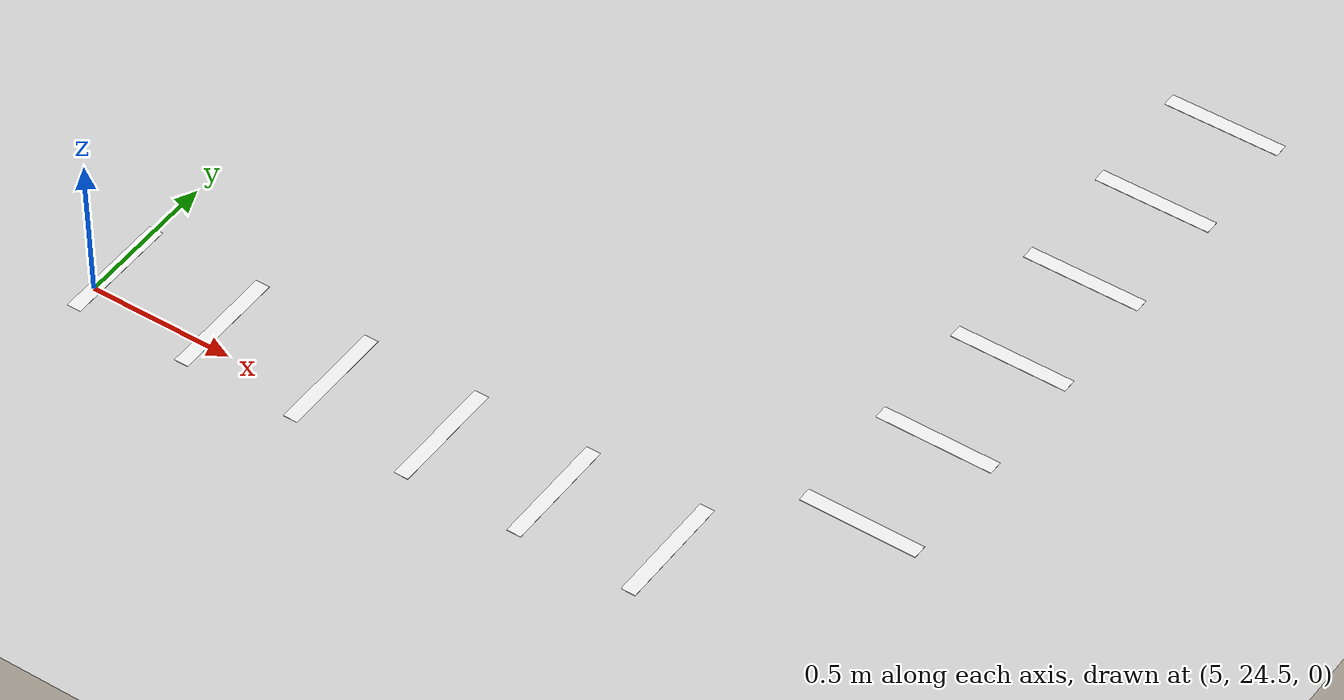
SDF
<sdf version="1.6">
 <world name="default">
  <model name="ground_plane">
   <static>1</static>
   <link name="link">
    <collision name="collision">
     <geometry><plane><normal>0 0 1</normal><size>100 100</size></plane></geometry>
     <surface><friction><ode><mu>100</mu><mu2>50</mu2></ode></friction></surface>
    </collision>
    <visual name="visual">
     <cast_shadows>0</cast_shadows>
     <geometry><plane><normal>0 0 1</normal><size>100 100</size></plane></geometry>
     <material>
      <script><uri>file://media/materials/scripts/gazebo.material</uri><name>Gazebo/Grey</name></script>
     </material>
    </visual>
   </link>
  </model>
  <model name="zebra_crossing_40cmx200cm_7">
   <link name="link_2">
    <inertial>
     <mass>1</mass>
     <inertia>
      <ixx>0.166667</ixx>
      <ixy>0</ixy>
      <ixz>0</ixz>
      <iyy>0.166667</iyy>
      <iyz>0</iyz>
      <izz>0.166667</izz>
     </inertia>
    </inertial>
    <visual name="ModelPreview_5::link_2::visual_1">
     <pose>-0.2 0 0 0 -0 0</pose>
     <geometry><box><size>0.05 0.4 0.001</size></box></geometry>
     <material>
      <lighting>1</lighting>
      <script><uri>file://media/materials/scripts/gazebo.material</uri><name>Gazebo/White</name></script>
     </material>
    </visual>
    <visual name="ModelPreview_5::link_2::visual_3">
     <pose>-0.6 0 0 0 -0 0</pose>
     <geometry><box><size>0.05 0.4 0.001</size></box></geometry>
     <material>
      <lighting>1</lighting>
      <script><uri>file://media/materials/scripts/gazebo.material</uri><name>Gazebo/White</name></script>
     </material>
    </visual>
    <visual name="ModelPreview_5::link_2::visual_4">
     <pose>1 0 0 0 -0 0</pose>
     <geometry><box><size>0.05 0.4 0.001</size></box></geometry>
     <material>
      <lighting>1</lighting>
      <script><uri>file://media/materials/scripts/gazebo.material</uri><name>Gazebo/White</name></script>
     </material>
    </visual>
    <visual name="visual">
     <pose>0.2 0 0 0 -0 0</pose>
     <geometry><box><size>0.05 0.4 0.001</size></box></geometry>
     <material>
      <lighting>1</lighting>
      <script><uri>file://media/materials/scripts/gazebo.material</uri><name>Gazebo/White</name></script>
     </material>
    </visual>
    <visual name="ModelPreview_5::link_2::visual_5">
     <pose>-1 0 0 0 -0 0</pose>
     <geometry><box><size>0.05 0.4 0.001</size></box></geometry>
     <material>
      <lighting>1</lighting>
      <script><uri>file://media/materials/scripts/gazebo.material</uri><name>Gazebo/White</name></script>
     </material>
    </visual>
    <visual name="ModelPreview_5::link_2::visual_2">
     <pose>0.6 0 0 0 -0 0</pose>
     <geometry><box><size>0.05 0.4 0.001</size></box></geometry>
     <material>
      <lighting>1</lighting>
      <script><uri>file://media/materials/scripts/gazebo.material</uri><name>Gazebo/White</name></script>
     </material>
    </visual>
    <collision name="collision_5">
     <pose>-1 0 0 0 -0 0</pose>
     <geometry><box><size>0.05 0.4 1e-05</size></box></geometry>
     <surface>
      <friction>
       <ode><mu>1</mu><mu2>1</mu2><fdir1>0 0 0</fdir1><slip1>0</slip1><slip2>0</slip2></ode>
       <torsional>
        <coefficient>1</coefficient>
        <patch_radius>0</patch_radius>
        <surface_radius>0</surface_radius>
        <use_patch_radius>1</use_patch_radius>
        <ode><slip>0</slip></ode>
       </torsional>
      </friction>
      <bounce><restitution_coefficient>0</restitution_coefficient><threshold>1e+06</threshold></bounce>
      <contact>
       <collide_without_contact>0</collide_without_contact>
       <collide_without_contact_bitmask>1</collide_without_contact_bitmask>
       <collide_bitmask>1</collide_bitmask>
       <ode>
        <soft_cfm>0</soft_cfm>
        <soft_erp>0.2</soft_erp>
        <kp>1e+13</kp>
        <kd>1</kd>
        <max_vel>0.01</max_vel>
        <min_depth>0</min_depth>
       </ode>
       <bullet>
        <split_impulse>1</split_impulse>
        <split_impulse_penetration_threshold>-0.01</split_impulse_penetration_threshold>
        <soft_cfm>0</soft_cfm>
        <soft_erp>0.2</soft_erp>
        <kp>1e+13</kp>
        <kd>1</kd>
       </bullet>
      </contact>
     </surface>
    </collision>
    <collision name="collision">
     <pose>0.2 0 0 0 -0 0</pose>
     <geometry><box><size>0.05 0.4 1e-05</size></box></geometry>
     <surface>
      <friction>
       <ode><mu>1</mu><mu2>1</mu2><fdir1>0 0 0</fdir1><slip1>0</slip1><slip2>0</slip2></ode>
       <torsional>
        <coefficient>1</coefficient>
        <patch_radius>0</patch_radius>
        <surface_radius>0</surface_radius>
        <use_patch_radius>1</use_patch_radius>
        <ode><slip>0</slip></ode>
       </torsional>
      </friction>
      <bounce><restitution_coefficient>0</restitution_coefficient><threshold>1e+06</threshold></bounce>
      <contact>
       <collide_without_contact>0</collide_without_contact>
       <collide_without_contact_bitmask>1</collide_without_contact_bitmask>
       <collide_bitmask>1</collide_bitmask>
       <ode>
        <soft_cfm>0</soft_cfm>
        <soft_erp>0.2</soft_erp>
        <kp>1e+13</kp>
        <kd>1</kd>
        <max_vel>0.01</max_vel>
        <min_depth>0</min_depth>
       </ode>
       <bullet>
        <split_impulse>1</split_impulse>
        <split_impulse_penetration_threshold>-0.01</split_impulse_penetration_threshold>
        <soft_cfm>0</soft_cfm>
        <soft_erp>0.2</soft_erp>
        <kp>1e+13</kp>
        <kd>1</kd>
       </bullet>
      </contact>
     </surface>
    </collision>
    <collision name="collision_3">
     <pose>-0.6 0 0 0 -0 0</pose>
     <geometry><box><size>0.05 0.4 1e-05</size></box></geometry>
     <surface>
      <friction>
       <ode><mu>1</mu><mu2>1</mu2><fdir1>0 0 0</fdir1><slip1>0</slip1><slip2>0</slip2></ode>
       <torsional>
        <coefficient>1</coefficient>
        <patch_radius>0</patch_radius>
        <surface_radius>0</surface_radius>
        <use_patch_radius>1</use_patch_radius>
        <ode><slip>0</slip></ode>
       </torsional>
      </friction>
      <bounce><restitution_coefficient>0</restitution_coefficient><threshold>1e+06</threshold></bounce>
      <contact>
       <collide_without_contact>0</collide_without_contact>
       <collide_without_contact_bitmask>1</collide_without_contact_bitmask>
       <collide_bitmask>1</collide_bitmask>
       <ode>
        <soft_cfm>0</soft_cfm>
        <soft_erp>0.2</soft_erp>
        <kp>1e+13</kp>
        <kd>1</kd>
        <max_vel>0.01</max_vel>
        <min_depth>0</min_depth>
       </ode>
       <bullet>
        <split_impulse>1</split_impulse>
        <split_impulse_penetration_threshold>-0.01</split_impulse_penetration_threshold>
        <soft_cfm>0</soft_cfm>
        <soft_erp>0.2</soft_erp>
        <kp>1e+13</kp>
        <kd>1</kd>
       </bullet>
      </contact>
     </surface>
    </collision>
    <collision name="collision_4">
     <pose>1 0 0 0 -0 0</pose>
     <geometry><box><size>0.05 0.4 1e-05</size></box></geometry>
     <surface>
      <friction>
       <ode><mu>1</mu><mu2>1</mu2><fdir1>0 0 0</fdir1><slip1>0</slip1><slip2>0</slip2></ode>
       <torsional>
        <coefficient>1</coefficient>
        <patch_radius>0</patch_radius>
        <surface_radius>0</surface_radius>
        <use_patch_radius>1</use_patch_radius>
        <ode><slip>0</slip></ode>
       </torsional>
      </friction>
      <bounce><restitution_coefficient>0</restitution_coefficient><threshold>1e+06</threshold></bounce>
      <contact>
       <collide_without_contact>0</collide_without_contact>
       <collide_without_contact_bitmask>1</collide_without_contact_bitmask>
       <collide_bitmask>1</collide_bitmask>
       <ode>
        <soft_cfm>0</soft_cfm>
        <soft_erp>0.2</soft_erp>
        <kp>1e+13</kp>
        <kd>1</kd>
        <max_vel>0.01</max_vel>
        <min_depth>0</min_depth>
       </ode>
       <bullet>
        <split_impulse>1</split_impulse>
        <split_impulse_penetration_threshold>-0.01</split_impulse_penetration_threshold>
        <soft_cfm>0</soft_cfm>
        <soft_erp>0.2</soft_erp>
        <kp>1e+13</kp>
        <kd>1</kd>
       </bullet>
      </contact>
     </surface>
    </collision>
    <collision name="collision_2">
     <pose>0.6 0 0 0 -0 0</pose>
     <geometry><box><size>0.05 0.4 1e-05</size></box></geometry>
     <surface>
      <friction>
       <ode><mu>1</mu><mu2>1</mu2><fdir1>0 0 0</fdir1><slip1>0</slip1><slip2>0</slip2></ode>
       <torsional>
        <coefficient>1</coefficient>
        <patch_radius>0</patch_radius>
        <surface_radius>0</surface_radius>
        <use_patch_radius>1</use_patch_radius>
        <ode><slip>0</slip></ode>
       </torsional>
      </friction>
      <bounce><restitution_coefficient>0</restitution_coefficient><threshold>1e+06</threshold></bounce>
      <contact>
       <collide_without_contact>0</collide_without_contact>
       <collide_without_contact_bitmask>1</collide_without_contact_bitmask>
       <collide_bitmask>1</collide_bitmask>
       <ode>
        <soft_cfm>0</soft_cfm>
        <soft_erp>0.2</soft_erp>
        <kp>1e+13</kp>
        <kd>1</kd>
        <max_vel>0.01</max_vel>
        <min_depth>0</min_depth>
       </ode>
       <bullet>
        <split_impulse>1</split_impulse>
        <split_impulse_penetration_threshold>-0.01</split_impulse_penetration_threshold>
        <soft_cfm>0</soft_cfm>
        <soft_erp>0.2</soft_erp>
        <kp>1e+13</kp>
        <kd>1</kd>
       </bullet>
      </contact>
     </surface>
    </collision>
    <collision name="collision_1">
     <pose>-0.2 0 0 0 -0 0</pose>
     <geometry><box><size>0.05 0.4 1e-05</size></box></geometry>
     <surface>
      <friction>
       <ode><mu>1</mu><mu2>1</mu2><fdir1>0 0 0</fdir1><slip1>0</slip1><slip2>0</slip2></ode>
       <torsional>
        <coefficient>1</coefficient>
        <patch_radius>0</patch_radius>
        <surface_radius>0</surface_radius>
        <use_patch_radius>1</use_patch_radius>
        <ode><slip>0</slip></ode>
       </torsional>
      </friction>
      <bounce><restitution_coefficient>0</restitution_coefficient><threshold>1e+06</threshold></bounce>
      <contact>
       <collide_without_contact>0</collide_without_contact>
       <collide_without_contact_bitmask>1</collide_without_contact_bitmask>
       <collide_bitmask>1</collide_bitmask>
       <ode>
        <soft_cfm>0</soft_cfm>
        <soft_erp>0.2</soft_erp>
        <kp>1e+13</kp>
        <kd>1</kd>
        <max_vel>0.01</max_vel>
        <min_depth>0</min_depth>
       </ode>
       <bullet>
        <split_impulse>1</split_impulse>
        <split_impulse_penetration_threshold>-0.01</split_impulse_penetration_threshold>
        <soft_cfm>0</soft_cfm>
        <soft_erp>0.2</soft_erp>
        <kp>1e+13</kp>
        <kd>1</kd>
       </bullet>
      </contact>
     </surface>
    </collision>
   </link>
   <static>1</static>
   <pose>6 24.6 0 0 -0 0</pose>
  </model>
  <model name="zebra_crossing_40cmx200cm_12">
   <link name="link_2">
    <inertial>
     <mass>1</mass>
     <inertia>
      <ixx>0.166667</ixx>
      <ixy>0</ixy>
      <ixz>0</ixz>
      <iyy>0.166667</iyy>
      <iyz>0</iyz>
      <izz>0.166667</izz>
     </inertia>
    </inertial>
    <visual name="ModelPreview_5::link_2::visual_1">
     <pose>-0.2 0 0 0 -0 0</pose>
     <geometry><box><size>0.05 0.4 0.001</size></box></geometry>
     <material>
      <lighting>1</lighting>
      <script><uri>file://media/materials/scripts/gazebo.material</uri><name>Gazebo/White</name></script>
     </material>
    </visual>
    <visual name="ModelPreview_5::link_2::visual_3">
     <pose>-0.6 0 0 0 -0 0</pose>
     <geometry><box><size>0.05 0.4 0.001</size></box></geometry>
     <material>
      <lighting>1</lighting>
      <script><uri>file://media/materials/scripts/gazebo.material</uri><name>Gazebo/White</name></script>
     </material>
    </visual>
    <visual name="ModelPreview_5::link_2::visual_4">
     <pose>1 0 0 0 -0 0</pose>
     <geometry><box><size>0.05 0.4 0.001</size></box></geometry>
     <material>
      <lighting>1</lighting>
      <script><uri>file://media/materials/scripts/gazebo.material</uri><name>Gazebo/White</name></script>
     </material>
    </visual>
    <visual name="visual">
     <pose>0.2 0 0 0 -0 0</pose>
     <geometry><box><size>0.05 0.4 0.001</size></box></geometry>
     <material>
      <lighting>1</lighting>
      <script><uri>file://media/materials/scripts/gazebo.material</uri><name>Gazebo/White</name></script>
     </material>
    </visual>
    <visual name="ModelPreview_5::link_2::visual_5">
     <pose>-1 0 0 0 -0 0</pose>
     <geometry><box><size>0.05 0.4 0.001</size></box></geometry>
     <material>
      <lighting>1</lighting>
      <script><uri>file://media/materials/scripts/gazebo.material</uri><name>Gazebo/White</name></script>
     </material>
    </visual>
    <visual name="ModelPreview_5::link_2::visual_2">
     <pose>0.6 0 0 0 -0 0</pose>
     <geometry><box><size>0.05 0.4 0.001</size></box></geometry>
     <material>
      <lighting>1</lighting>
      <script><uri>file://media/materials/scripts/gazebo.material</uri><name>Gazebo/White</name></script>
     </material>
    </visual>
    <collision name="collision_5">
     <pose>-1 0 0 0 -0 0</pose>
     <geometry><box><size>0.05 0.4 1e-05</size></box></geometry>
     <surface>
      <friction>
       <ode><mu>1</mu><mu2>1</mu2><fdir1>0 0 0</fdir1><slip1>0</slip1><slip2>0</slip2></ode>
       <torsional>
        <coefficient>1</coefficient>
        <patch_radius>0</patch_radius>
        <surface_radius>0</surface_radius>
        <use_patch_radius>1</use_patch_radius>
        <ode><slip>0</slip></ode>
       </torsional>
      </friction>
      <bounce><restitution_coefficient>0</restitution_coefficient><threshold>1e+06</threshold></bounce>
      <contact>
       <collide_without_contact>0</collide_without_contact>
       <collide_without_contact_bitmask>1</collide_without_contact_bitmask>
       <collide_bitmask>1</collide_bitmask>
       <ode>
        <soft_cfm>0</soft_cfm>
        <soft_erp>0.2</soft_erp>
        <kp>1e+13</kp>
        <kd>1</kd>
        <max_vel>0.01</max_vel>
        <min_depth>0</min_depth>
       </ode>
       <bullet>
        <split_impulse>1</split_impulse>
        <split_impulse_penetration_threshold>-0.01</split_impulse_penetration_threshold>
        <soft_cfm>0</soft_cfm>
        <soft_erp>0.2</soft_erp>
        <kp>1e+13</kp>
        <kd>1</kd>
       </bullet>
      </contact>
     </surface>
    </collision>
    <collision name="collision">
     <pose>0.2 0 0 0 -0 0</pose>
     <geometry><box><size>0.05 0.4 1e-05</size></box></geometry>
     <surface>
      <friction>
       <ode><mu>1</mu><mu2>1</mu2><fdir1>0 0 0</fdir1><slip1>0</slip1><slip2>0</slip2></ode>
       <torsional>
        <coefficient>1</coefficient>
        <patch_radius>0</patch_radius>
        <surface_radius>0</surface_radius>
        <use_patch_radius>1</use_patch_radius>
        <ode><slip>0</slip></ode>
       </torsional>
      </friction>
      <bounce><restitution_coefficient>0</restitution_coefficient><threshold>1e+06</threshold></bounce>
      <contact>
       <collide_without_contact>0</collide_without_contact>
       <collide_without_contact_bitmask>1</collide_without_contact_bitmask>
       <collide_bitmask>1</collide_bitmask>
       <ode>
        <soft_cfm>0</soft_cfm>
        <soft_erp>0.2</soft_erp>
        <kp>1e+13</kp>
        <kd>1</kd>
        <max_vel>0.01</max_vel>
        <min_depth>0</min_depth>
       </ode>
       <bullet>
        <split_impulse>1</split_impulse>
        <split_impulse_penetration_threshold>-0.01</split_impulse_penetration_threshold>
        <soft_cfm>0</soft_cfm>
        <soft_erp>0.2</soft_erp>
        <kp>1e+13</kp>
        <kd>1</kd>
       </bullet>
      </contact>
     </surface>
    </collision>
    <collision name="collision_3">
     <pose>-0.6 0 0 0 -0 0</pose>
     <geometry><box><size>0.05 0.4 1e-05</size></box></geometry>
     <surface>
      <friction>
       <ode><mu>1</mu><mu2>1</mu2><fdir1>0 0 0</fdir1><slip1>0</slip1><slip2>0</slip2></ode>
       <torsional>
        <coefficient>1</coefficient>
        <patch_radius>0</patch_radius>
        <surface_radius>0</surface_radius>
        <use_patch_radius>1</use_patch_radius>
        <ode><slip>0</slip></ode>
       </torsional>
      </friction>
      <bounce><restitution_coefficient>0</restitution_coefficient><threshold>1e+06</threshold></bounce>
      <contact>
       <collide_without_contact>0</collide_without_contact>
       <collide_without_contact_bitmask>1</collide_without_contact_bitmask>
       <collide_bitmask>1</collide_bitmask>
       <ode>
        <soft_cfm>0</soft_cfm>
        <soft_erp>0.2</soft_erp>
        <kp>1e+13</kp>
        <kd>1</kd>
        <max_vel>0.01</max_vel>
        <min_depth>0</min_depth>
       </ode>
       <bullet>
        <split_impulse>1</split_impulse>
        <split_impulse_penetration_threshold>-0.01</split_impulse_penetration_threshold>
        <soft_cfm>0</soft_cfm>
        <soft_erp>0.2</soft_erp>
        <kp>1e+13</kp>
        <kd>1</kd>
       </bullet>
      </contact>
     </surface>
    </collision>
    <collision name="collision_4">
     <pose>1 0 0 0 -0 0</pose>
     <geometry><box><size>0.05 0.4 1e-05</size></box></geometry>
     <surface>
      <friction>
       <ode><mu>1</mu><mu2>1</mu2><fdir1>0 0 0</fdir1><slip1>0</slip1><slip2>0</slip2></ode>
       <torsional>
        <coefficient>1</coefficient>
        <patch_radius>0</patch_radius>
        <surface_radius>0</surface_radius>
        <use_patch_radius>1</use_patch_radius>
        <ode><slip>0</slip></ode>
       </torsional>
      </friction>
      <bounce><restitution_coefficient>0</restitution_coefficient><threshold>1e+06</threshold></bounce>
      <contact>
       <collide_without_contact>0</collide_without_contact>
       <collide_without_contact_bitmask>1</collide_without_contact_bitmask>
       <collide_bitmask>1</collide_bitmask>
       <ode>
        <soft_cfm>0</soft_cfm>
        <soft_erp>0.2</soft_erp>
        <kp>1e+13</kp>
        <kd>1</kd>
        <max_vel>0.01</max_vel>
        <min_depth>0</min_depth>
       </ode>
       <bullet>
        <split_impulse>1</split_impulse>
        <split_impulse_penetration_threshold>-0.01</split_impulse_penetration_threshold>
        <soft_cfm>0</soft_cfm>
        <soft_erp>0.2</soft_erp>
        <kp>1e+13</kp>
        <kd>1</kd>
       </bullet>
      </contact>
     </surface>
    </collision>
    <collision name="collision_2">
     <pose>0.6 0 0 0 -0 0</pose>
     <geometry><box><size>0.05 0.4 1e-05</size></box></geometry>
     <surface>
      <friction>
       <ode><mu>1</mu><mu2>1</mu2><fdir1>0 0 0</fdir1><slip1>0</slip1><slip2>0</slip2></ode>
       <torsional>
        <coefficient>1</coefficient>
        <patch_radius>0</patch_radius>
        <surface_radius>0</surface_radius>
        <use_patch_radius>1</use_patch_radius>
        <ode><slip>0</slip></ode>
       </torsional>
      </friction>
      <bounce><restitution_coefficient>0</restitution_coefficient><threshold>1e+06</threshold></bounce>
      <contact>
       <collide_without_contact>0</collide_without_contact>
       <collide_without_contact_bitmask>1</collide_without_contact_bitmask>
       <collide_bitmask>1</collide_bitmask>
       <ode>
        <soft_cfm>0</soft_cfm>
        <soft_erp>0.2</soft_erp>
        <kp>1e+13</kp>
        <kd>1</kd>
        <max_vel>0.01</max_vel>
        <min_depth>0</min_depth>
       </ode>
       <bullet>
        <split_impulse>1</split_impulse>
        <split_impulse_penetration_threshold>-0.01</split_impulse_penetration_threshold>
        <soft_cfm>0</soft_cfm>
        <soft_erp>0.2</soft_erp>
        <kp>1e+13</kp>
        <kd>1</kd>
       </bullet>
      </contact>
     </surface>
    </collision>
    <collision name="collision_1">
     <pose>-0.2 0 0 0 -0 0</pose>
     <geometry><box><size>0.05 0.4 1e-05</size></box></geometry>
     <surface>
      <friction>
       <ode><mu>1</mu><mu2>1</mu2><fdir1>0 0 0</fdir1><slip1>0</slip1><slip2>0</slip2></ode>
       <torsional>
        <coefficient>1</coefficient>
        <patch_radius>0</patch_radius>
        <surface_radius>0</surface_radius>
        <use_patch_radius>1</use_patch_radius>
        <ode><slip>0</slip></ode>
       </torsional>
      </friction>
      <bounce><restitution_coefficient>0</restitution_coefficient><threshold>1e+06</threshold></bounce>
      <contact>
       <collide_without_contact>0</collide_without_contact>
       <collide_without_contact_bitmask>1</collide_without_contact_bitmask>
       <collide_bitmask>1</collide_bitmask>
       <ode>
        <soft_cfm>0</soft_cfm>
        <soft_erp>0.2</soft_erp>
        <kp>1e+13</kp>
        <kd>1</kd>
        <max_vel>0.01</max_vel>
        <min_depth>0</min_depth>
       </ode>
       <bullet>
        <split_impulse>1</split_impulse>
        <split_impulse_penetration_threshold>-0.01</split_impulse_penetration_threshold>
        <soft_cfm>0</soft_cfm>
        <soft_erp>0.2</soft_erp>
        <kp>1e+13</kp>
        <kd>1</kd>
       </bullet>
      </contact>
     </surface>
    </collision>
   </link>
   <static>1</static>
   <pose>7.4 26 0 0 -0 1.5708</pose>
  </model>
 </world>
</sdf>
